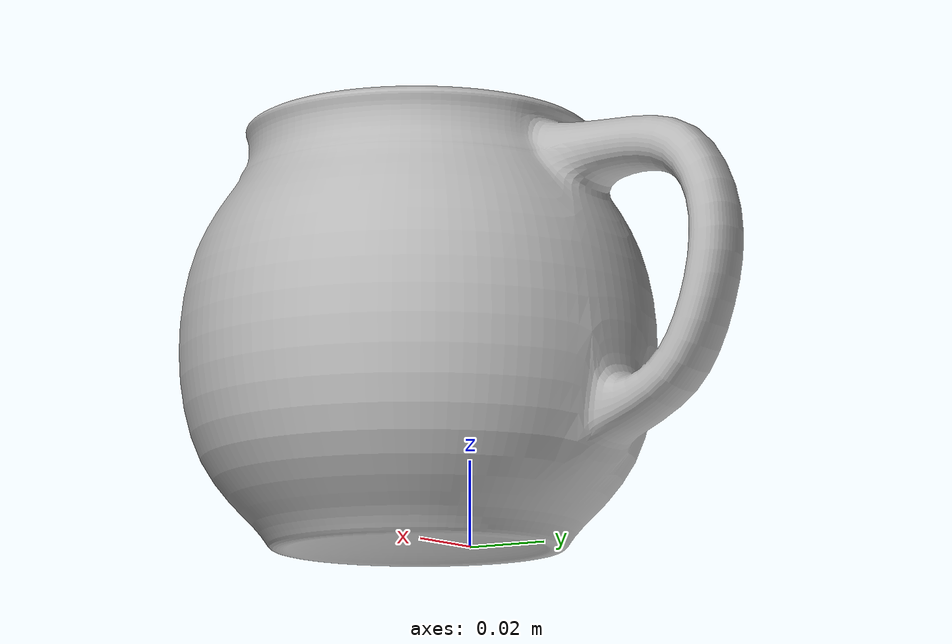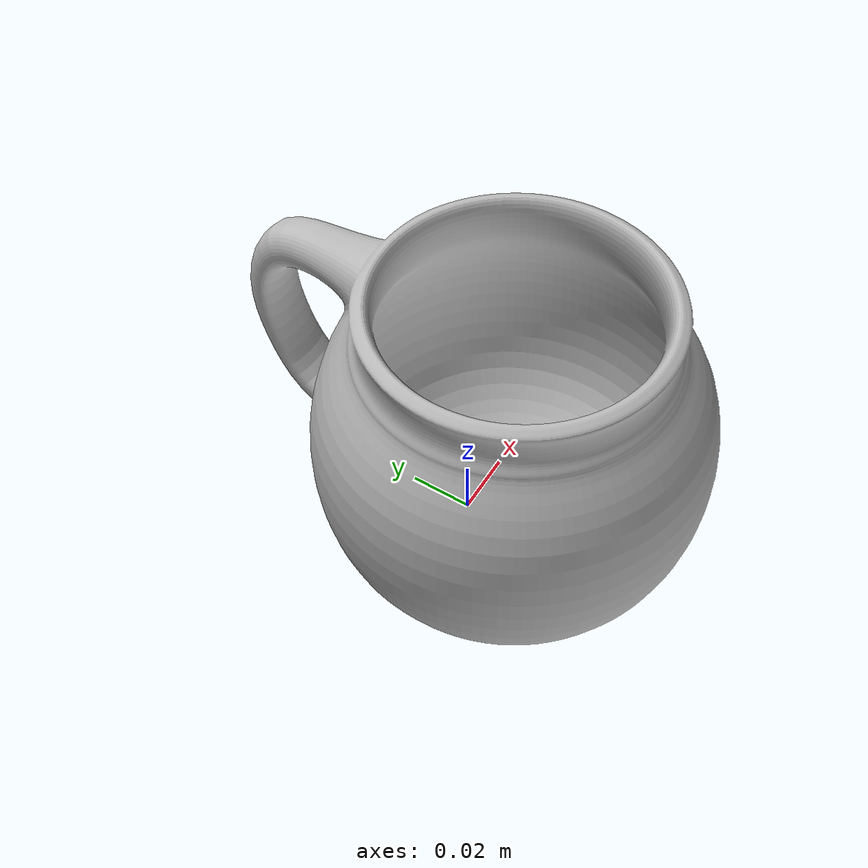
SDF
<?xml version="1.0" ?>
<sdf version="1.4">
  <model name="drill_blue_small">
    <pose>0 0 0.0505 0 0 0</pose>
    <static>false</static>
    <link name="body">
      <inertial>
        <pose>0.000001 -0.008431 -0.003743 0 0 0</pose>
        <mass>1</mass>
        <inertia>
          <ixx>0.38900e-3</ixx>
          <ixy>-0.00001e-3</ixy>
          <ixz>-0.00002e-3</ixz>
          <iyy>0.32198e-3</iyy>
          <iyz>-0.01703e-3</iyz>
          <izz>0.40459e-3</izz>
        </inertia>
      </inertial>
      <visual name="visual">
        <cast_shadows>true</cast_shadows>
        <geometry>
         <mesh>
           <uri>package://costar_objects/sdf/mug/meshes/mug.obj</uri>
         </mesh>
        </geometry>
      </visual>
      <collision name="collision">
        <surface>
          <friction>
            <ode>
              <mu>0.3</mu>
              <mu2>0.3</mu2>
            </ode>
          </friction>
        </surface>
        <geometry>
         <mesh>
           <uri>package://costar_objects/sdf/mug/meshes/mug.stl</uri>
         </mesh>
        </geometry>
      </collision>
    </link>
  </model>
</sdf>
